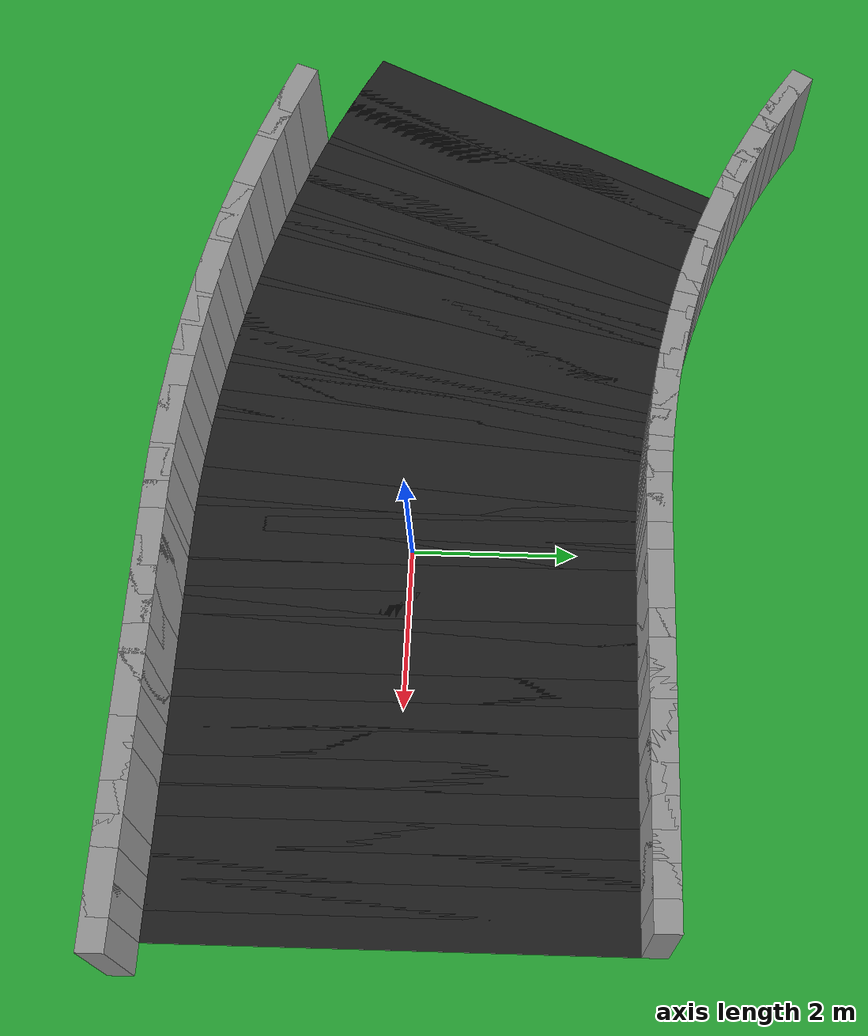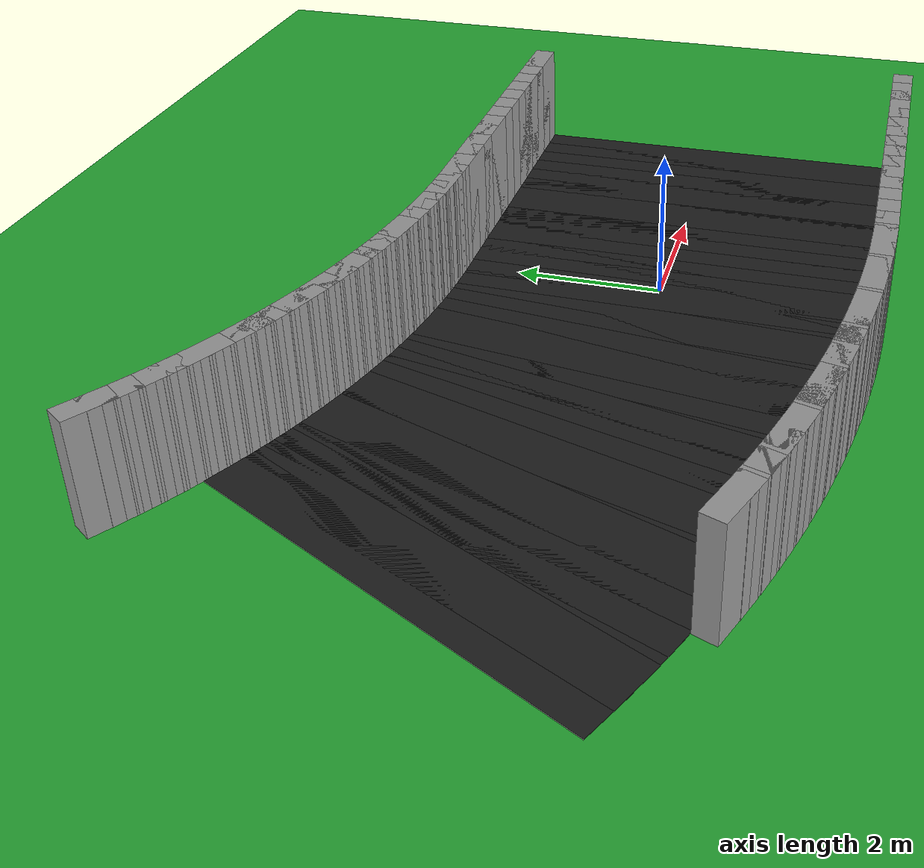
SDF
<sdf version="1.6">
 <world name="loop_speedloop">
  <include><uri>model://sun</uri></include>
  <model name="ground_plane">
   <static>true</static>
   <link name="link">
    <collision name="collision">
     <surface><friction><ode><mu>100</mu><mu2>50</mu2></ode></friction></surface>
     <geometry><plane><normal>0 0 1</normal><size>120 120</size></plane></geometry>
    </collision>
    <visual name="visual">
     <geometry><plane><normal>0 0 1</normal><size>120 120</size></plane></geometry>
     <material>
      <script><uri>file://media/materials/scripts/gazebo.material</uri><name>Gazebo/Green</name></script>
     </material>
    </visual>
   </link>
  </model>
  <model name="asphalt_0">
   <static>true</static>
   <pose>0.175 0.000 0.005 0 0 0.00000</pose>
   <link name="link">
    <visual name="visual">
     <geometry><box><size>0.710 5.500 0.010</size></box></geometry>
     <material>
      <script><uri>file://media/materials/scripts/gazebo.material</uri><name>Gazebo/Black</name></script>
     </material>
    </visual>
   </link>
  </model>
  <model name="curbL_0">
   <static>true</static>
   <pose>0.175 2.900 0.750 0 0 0.00000</pose>
   <link name="link">
    <collision name="collision"><geometry><box><size>0.710 0.300 1.500</size></box></geometry></collision>
    <visual name="visual">
     <geometry><box><size>0.710 0.300 1.500</size></box></geometry>
     <material>
      <script><uri>file://media/materials/scripts/gazebo.material</uri><name>Gazebo/Grey</name></script>
     </material>
    </visual>
   </link>
  </model>
  <model name="curbR_0">
   <static>true</static>
   <pose>0.175 -2.900 0.750 0 0 0.00000</pose>
   <link name="link">
    <collision name="collision"><geometry><box><size>0.710 0.300 1.500</size></box></geometry></collision>
    <visual name="visual">
     <geometry><box><size>0.710 0.300 1.500</size></box></geometry>
     <material>
      <script><uri>file://media/materials/scripts/gazebo.material</uri><name>Gazebo/Grey</name></script>
     </material>
    </visual>
   </link>
  </model>
  <model name="asphalt_1">
   <static>true</static>
   <pose>0.525 0.000 0.005 0 0 0.00000</pose>
   <link name="link">
    <visual name="visual">
     <geometry><box><size>0.710 5.500 0.010</size></box></geometry>
     <material>
      <script><uri>file://media/materials/scripts/gazebo.material</uri><name>Gazebo/Black</name></script>
     </material>
    </visual>
   </link>
  </model>
  <model name="curbL_1">
   <static>true</static>
   <pose>0.525 2.900 0.750 0 0 0.00000</pose>
   <link name="link">
    <collision name="collision"><geometry><box><size>0.710 0.300 1.500</size></box></geometry></collision>
    <visual name="visual">
     <geometry><box><size>0.710 0.300 1.500</size></box></geometry>
     <material>
      <script><uri>file://media/materials/scripts/gazebo.material</uri><name>Gazebo/Grey</name></script>
     </material>
    </visual>
   </link>
  </model>
  <model name="curbR_1">
   <static>true</static>
   <pose>0.525 -2.900 0.750 0 0 0.00000</pose>
   <link name="link">
    <collision name="collision"><geometry><box><size>0.710 0.300 1.500</size></box></geometry></collision>
    <visual name="visual">
     <geometry><box><size>0.710 0.300 1.500</size></box></geometry>
     <material>
      <script><uri>file://media/materials/scripts/gazebo.material</uri><name>Gazebo/Grey</name></script>
     </material>
    </visual>
   </link>
  </model>
  <model name="asphalt_2">
   <static>true</static>
   <pose>0.875 0.000 0.005 0 0 0.00000</pose>
   <link name="link">
    <visual name="visual">
     <geometry><box><size>0.710 5.500 0.010</size></box></geometry>
     <material>
      <script><uri>file://media/materials/scripts/gazebo.material</uri><name>Gazebo/Black</name></script>
     </material>
    </visual>
   </link>
  </model>
  <model name="curbL_2">
   <static>true</static>
   <pose>0.875 2.900 0.750 0 0 0.00000</pose>
   <link name="link">
    <collision name="collision"><geometry><box><size>0.710 0.300 1.500</size></box></geometry></collision>
    <visual name="visual">
     <geometry><box><size>0.710 0.300 1.500</size></box></geometry>
     <material>
      <script><uri>file://media/materials/scripts/gazebo.material</uri><name>Gazebo/Grey</name></script>
     </material>
    </visual>
   </link>
  </model>
  <model name="curbR_2">
   <static>true</static>
   <pose>0.875 -2.900 0.750 0 0 0.00000</pose>
   <link name="link">
    <collision name="collision"><geometry><box><size>0.710 0.300 1.500</size></box></geometry></collision>
    <visual name="visual">
     <geometry><box><size>0.710 0.300 1.500</size></box></geometry>
     <material>
      <script><uri>file://media/materials/scripts/gazebo.material</uri><name>Gazebo/Grey</name></script>
     </material>
    </visual>
   </link>
  </model>
  <model name="asphalt_3">
   <static>true</static>
   <pose>1.225 0.000 0.005 0 0 0.00000</pose>
   <link name="link">
    <visual name="visual">
     <geometry><box><size>0.710 5.500 0.010</size></box></geometry>
     <material>
      <script><uri>file://media/materials/scripts/gazebo.material</uri><name>Gazebo/Black</name></script>
     </material>
    </visual>
   </link>
  </model>
  <model name="curbL_3">
   <static>true</static>
   <pose>1.225 2.900 0.750 0 0 0.00000</pose>
   <link name="link">
    <collision name="collision"><geometry><box><size>0.710 0.300 1.500</size></box></geometry></collision>
    <visual name="visual">
     <geometry><box><size>0.710 0.300 1.500</size></box></geometry>
     <material>
      <script><uri>file://media/materials/scripts/gazebo.material</uri><name>Gazebo/Grey</name></script>
     </material>
    </visual>
   </link>
  </model>
  <model name="curbR_3">
   <static>true</static>
   <pose>1.225 -2.900 0.750 0 0 0.00000</pose>
   <link name="link">
    <collision name="collision"><geometry><box><size>0.710 0.300 1.500</size></box></geometry></collision>
    <visual name="visual">
     <geometry><box><size>0.710 0.300 1.500</size></box></geometry>
     <material>
      <script><uri>file://media/materials/scripts/gazebo.material</uri><name>Gazebo/Grey</name></script>
     </material>
    </visual>
   </link>
  </model>
  <model name="asphalt_4">
   <static>true</static>
   <pose>1.575 0.000 0.005 0 0 0.00000</pose>
   <link name="link">
    <visual name="visual">
     <geometry><box><size>0.710 5.500 0.010</size></box></geometry>
     <material>
      <script><uri>file://media/materials/scripts/gazebo.material</uri><name>Gazebo/Black</name></script>
     </material>
    </visual>
   </link>
  </model>
  <model name="curbL_4">
   <static>true</static>
   <pose>1.575 2.900 0.750 0 0 0.00000</pose>
   <link name="link">
    <collision name="collision"><geometry><box><size>0.710 0.300 1.500</size></box></geometry></collision>
    <visual name="visual">
     <geometry><box><size>0.710 0.300 1.500</size></box></geometry>
     <material>
      <script><uri>file://media/materials/scripts/gazebo.material</uri><name>Gazebo/Grey</name></script>
     </material>
    </visual>
   </link>
  </model>
  <model name="curbR_4">
   <static>true</static>
   <pose>1.575 -2.900 0.750 0 0 0.00000</pose>
   <link name="link">
    <collision name="collision"><geometry><box><size>0.710 0.300 1.500</size></box></geometry></collision>
    <visual name="visual">
     <geometry><box><size>0.710 0.300 1.500</size></box></geometry>
     <material>
      <script><uri>file://media/materials/scripts/gazebo.material</uri><name>Gazebo/Grey</name></script>
     </material>
    </visual>
   </link>
  </model>
  <model name="asphalt_5">
   <static>true</static>
   <pose>1.925 0.000 0.005 0 0 0.00000</pose>
   <link name="link">
    <visual name="visual">
     <geometry><box><size>0.710 5.500 0.010</size></box></geometry>
     <material>
      <script><uri>file://media/materials/scripts/gazebo.material</uri><name>Gazebo/Black</name></script>
     </material>
    </visual>
   </link>
  </model>
  <model name="curbL_5">
   <static>true</static>
   <pose>1.925 2.900 0.750 0 0 0.00000</pose>
   <link name="link">
    <collision name="collision"><geometry><box><size>0.710 0.300 1.500</size></box></geometry></collision>
    <visual name="visual">
     <geometry><box><size>0.710 0.300 1.500</size></box></geometry>
     <material>
      <script><uri>file://media/materials/scripts/gazebo.material</uri><name>Gazebo/Grey</name></script>
     </material>
    </visual>
   </link>
  </model>
  <model name="curbR_5">
   <static>true</static>
   <pose>1.925 -2.900 0.750 0 0 0.00000</pose>
   <link name="link">
    <collision name="collision"><geometry><box><size>0.710 0.300 1.500</size></box></geometry></collision>
    <visual name="visual">
     <geometry><box><size>0.710 0.300 1.500</size></box></geometry>
     <material>
      <script><uri>file://media/materials/scripts/gazebo.material</uri><name>Gazebo/Grey</name></script>
     </material>
    </visual>
   </link>
  </model>
  <model name="asphalt_6">
   <static>true</static>
   <pose>2.275 0.000 0.005 0 0 0.00000</pose>
   <link name="link">
    <visual name="visual">
     <geometry><box><size>0.710 5.500 0.010</size></box></geometry>
     <material>
      <script><uri>file://media/materials/scripts/gazebo.material</uri><name>Gazebo/Black</name></script>
     </material>
    </visual>
   </link>
  </model>
  <model name="curbL_6">
   <static>true</static>
   <pose>2.275 2.900 0.750 0 0 0.00000</pose>
   <link name="link">
    <collision name="collision"><geometry><box><size>0.710 0.300 1.500</size></box></geometry></collision>
    <visual name="visual">
     <geometry><box><size>0.710 0.300 1.500</size></box></geometry>
     <material>
      <script><uri>file://media/materials/scripts/gazebo.material</uri><name>Gazebo/Grey</name></script>
     </material>
    </visual>
   </link>
  </model>
  <model name="curbR_6">
   <static>true</static>
   <pose>2.275 -2.900 0.750 0 0 0.00000</pose>
   <link name="link">
    <collision name="collision"><geometry><box><size>0.710 0.300 1.500</size></box></geometry></collision>
    <visual name="visual">
     <geometry><box><size>0.710 0.300 1.500</size></box></geometry>
     <material>
      <script><uri>file://media/materials/scripts/gazebo.material</uri><name>Gazebo/Grey</name></script>
     </material>
    </visual>
   </link>
  </model>
  <model name="asphalt_7">
   <static>true</static>
   <pose>2.625 0.000 0.005 0 0 0.00000</pose>
   <link name="link">
    <visual name="visual">
     <geometry><box><size>0.710 5.500 0.010</size></box></geometry>
     <material>
      <script><uri>file://media/materials/scripts/gazebo.material</uri><name>Gazebo/Black</name></script>
     </material>
    </visual>
   </link>
  </model>
  <model name="curbL_7">
   <static>true</static>
   <pose>2.625 2.900 0.750 0 0 0.00000</pose>
   <link name="link">
    <collision name="collision"><geometry><box><size>0.710 0.300 1.500</size></box></geometry></collision>
    <visual name="visual">
     <geometry><box><size>0.710 0.300 1.500</size></box></geometry>
     <material>
      <script><uri>file://media/materials/scripts/gazebo.material</uri><name>Gazebo/Grey</name></script>
     </material>
    </visual>
   </link>
  </model>
  <model name="curbR_7">
   <static>true</static>
   <pose>2.625 -2.900 0.750 0 0 0.00000</pose>
   <link name="link">
    <collision name="collision"><geometry><box><size>0.710 0.300 1.500</size></box></geometry></collision>
    <visual name="visual">
     <geometry><box><size>0.710 0.300 1.500</size></box></geometry>
     <material>
      <script><uri>file://media/materials/scripts/gazebo.material</uri><name>Gazebo/Grey</name></script>
     </material>
    </visual>
   </link>
  </model>
  <model name="asphalt_8">
   <static>true</static>
   <pose>2.975 0.000 0.005 0 0 0.00000</pose>
   <link name="link">
    <visual name="visual">
     <geometry><box><size>0.710 5.500 0.010</size></box></geometry>
     <material>
      <script><uri>file://media/materials/scripts/gazebo.material</uri><name>Gazebo/Black</name></script>
     </material>
    </visual>
   </link>
  </model>
  <model name="curbL_8">
   <static>true</static>
   <pose>2.975 2.900 0.750 0 0 0.00000</pose>
   <link name="link">
    <collision name="collision"><geometry><box><size>0.710 0.300 1.500</size></box></geometry></collision>
    <visual name="visual">
     <geometry><box><size>0.710 0.300 1.500</size></box></geometry>
     <material>
      <script><uri>file://media/materials/scripts/gazebo.material</uri><name>Gazebo/Grey</name></script>
     </material>
    </visual>
   </link>
  </model>
  <model name="curbR_8">
   <static>true</static>
   <pose>2.975 -2.900 0.750 0 0 0.00000</pose>
   <link name="link">
    <collision name="collision"><geometry><box><size>0.710 0.300 1.500</size></box></geometry></collision>
    <visual name="visual">
     <geometry><box><size>0.710 0.300 1.500</size></box></geometry>
     <material>
      <script><uri>file://media/materials/scripts/gazebo.material</uri><name>Gazebo/Grey</name></script>
     </material>
    </visual>
   </link>
  </model>
  <model name="asphalt_9">
   <static>true</static>
   <pose>3.325 0.000 0.005 0 0 0.00000</pose>
   <link name="link">
    <visual name="visual">
     <geometry><box><size>0.710 5.500 0.010</size></box></geometry>
     <material>
      <script><uri>file://media/materials/scripts/gazebo.material</uri><name>Gazebo/Black</name></script>
     </material>
    </visual>
   </link>
  </model>
  <model name="curbL_9">
   <static>true</static>
   <pose>3.325 2.900 0.750 0 0 0.00000</pose>
   <link name="link">
    <collision name="collision"><geometry><box><size>0.710 0.300 1.500</size></box></geometry></collision>
    <visual name="visual">
     <geometry><box><size>0.710 0.300 1.500</size></box></geometry>
     <material>
      <script><uri>file://media/materials/scripts/gazebo.material</uri><name>Gazebo/Grey</name></script>
     </material>
    </visual>
   </link>
  </model>
  <model name="curbR_9">
   <static>true</static>
   <pose>3.325 -2.900 0.750 0 0 0.00000</pose>
   <link name="link">
    <collision name="collision"><geometry><box><size>0.710 0.300 1.500</size></box></geometry></collision>
    <visual name="visual">
     <geometry><box><size>0.710 0.300 1.500</size></box></geometry>
     <material>
      <script><uri>file://media/materials/scripts/gazebo.material</uri><name>Gazebo/Grey</name></script>
     </material>
    </visual>
   </link>
  </model>
  <model name="asphalt_10">
   <static>true</static>
   <pose>3.675 0.000 0.005 0 0 0.00000</pose>
   <link name="link">
    <visual name="visual">
     <geometry><box><size>0.710 5.500 0.010</size></box></geometry>
     <material>
      <script><uri>file://media/materials/scripts/gazebo.material</uri><name>Gazebo/Black</name></script>
     </material>
    </visual>
   </link>
  </model>
  <model name="curbL_10">
   <static>true</static>
   <pose>3.675 2.900 0.750 0 0 0.00000</pose>
   <link name="link">
    <collision name="collision"><geometry><box><size>0.710 0.300 1.500</size></box></geometry></collision>
    <visual name="visual">
     <geometry><box><size>0.710 0.300 1.500</size></box></geometry>
     <material>
      <script><uri>file://media/materials/scripts/gazebo.material</uri><name>Gazebo/Grey</name></script>
     </material>
    </visual>
   </link>
  </model>
  <model name="curbR_10">
   <static>true</static>
   <pose>3.675 -2.900 0.750 0 0 0.00000</pose>
   <link name="link">
    <collision name="collision"><geometry><box><size>0.710 0.300 1.500</size></box></geometry></collision>
    <visual name="visual">
     <geometry><box><size>0.710 0.300 1.500</size></box></geometry>
     <material>
      <script><uri>file://media/materials/scripts/gazebo.material</uri><name>Gazebo/Grey</name></script>
     </material>
    </visual>
   </link>
  </model>
  <model name="asphalt_11">
   <static>true</static>
   <pose>4.025 0.000 0.005 0 0 0.00000</pose>
   <link name="link">
    <visual name="visual">
     <geometry><box><size>0.710 5.500 0.010</size></box></geometry>
     <material>
      <script><uri>file://media/materials/scripts/gazebo.material</uri><name>Gazebo/Black</name></script>
     </material>
    </visual>
   </link>
  </model>
  <model name="curbL_11">
   <static>true</static>
   <pose>4.025 2.900 0.750 0 0 0.00000</pose>
   <link name="link">
    <collision name="collision"><geometry><box><size>0.710 0.300 1.500</size></box></geometry></collision>
    <visual name="visual">
     <geometry><box><size>0.710 0.300 1.500</size></box></geometry>
     <material>
      <script><uri>file://media/materials/scripts/gazebo.material</uri><name>Gazebo/Grey</name></script>
     </material>
    </visual>
   </link>
  </model>
  <model name="curbR_11">
   <static>true</static>
   <pose>4.025 -2.900 0.750 0 0 0.00000</pose>
   <link name="link">
    <collision name="collision"><geometry><box><size>0.710 0.300 1.500</size></box></geometry></collision>
    <visual name="visual">
     <geometry><box><size>0.710 0.300 1.500</size></box></geometry>
     <material>
      <script><uri>file://media/materials/scripts/gazebo.material</uri><name>Gazebo/Grey</name></script>
     </material>
    </visual>
   </link>
  </model>
  <model name="asphalt_12">
   <static>true</static>
   <pose>4.375 0.000 0.005 0 0 0.00000</pose>
   <link name="link">
    <visual name="visual">
     <geometry><box><size>0.710 5.500 0.010</size></box></geometry>
     <material>
      <script><uri>file://media/materials/scripts/gazebo.material</uri><name>Gazebo/Black</name></script>
     </material>
    </visual>
   </link>
  </model>
  <model name="curbL_12">
   <static>true</static>
   <pose>4.375 2.900 0.750 0 0 0.00000</pose>
   <link name="link">
    <collision name="collision"><geometry><box><size>0.710 0.300 1.500</size></box></geometry></collision>
    <visual name="visual">
     <geometry><box><size>0.710 0.300 1.500</size></box></geometry>
     <material>
      <script><uri>file://media/materials/scripts/gazebo.material</uri><name>Gazebo/Grey</name></script>
     </material>
    </visual>
   </link>
  </model>
  <model name="curbR_12">
   <static>true</static>
   <pose>4.375 -2.900 0.750 0 0 0.00000</pose>
   <link name="link">
    <collision name="collision"><geometry><box><size>0.710 0.300 1.500</size></box></geometry></collision>
    <visual name="visual">
     <geometry><box><size>0.710 0.300 1.500</size></box></geometry>
     <material>
      <script><uri>file://media/materials/scripts/gazebo.material</uri><name>Gazebo/Grey</name></script>
     </material>
    </visual>
   </link>
  </model>
  <model name="curbR_13">
   <static>true</static>
   <pose>4.725 -2.900 0.750 0 0 0.00000</pose>
   <link name="link">
    <collision name="collision"><geometry><box><size>0.710 0.300 1.500</size></box></geometry></collision>
    <visual name="visual">
     <geometry><box><size>0.710 0.300 1.500</size></box></geometry>
     <material>
      <script><uri>file://media/materials/scripts/gazebo.material</uri><name>Gazebo/Grey</name></script>
     </material>
    </visual>
   </link>
  </model>
  <model name="curbL_496">
   <static>true</static>
   <pose>-6.138 4.752 0.750 0 0 -0.58593</pose>
   <link name="link">
    <collision name="collision"><geometry><box><size>0.637 0.300 1.500</size></box></geometry></collision>
    <visual name="visual">
     <geometry><box><size>0.637 0.300 1.500</size></box></geometry>
     <material>
      <script><uri>file://media/materials/scripts/gazebo.material</uri><name>Gazebo/Grey</name></script>
     </material>
    </visual>
   </link>
  </model>
  <model name="curbL_497">
   <static>true</static>
   <pose>-5.905 4.602 0.750 0 0 -0.56100</pose>
   <link name="link">
    <collision name="collision"><geometry><box><size>0.637 0.300 1.500</size></box></geometry></collision>
    <visual name="visual">
     <geometry><box><size>0.637 0.300 1.500</size></box></geometry>
     <material>
      <script><uri>file://media/materials/scripts/gazebo.material</uri><name>Gazebo/Grey</name></script>
     </material>
    </visual>
   </link>
  </model>
  <model name="curbL_498">
   <static>true</static>
   <pose>-5.669 4.458 0.750 0 0 -0.53607</pose>
   <link name="link">
    <collision name="collision"><geometry><box><size>0.637 0.300 1.500</size></box></geometry></collision>
    <visual name="visual">
     <geometry><box><size>0.637 0.300 1.500</size></box></geometry>
     <material>
      <script><uri>file://media/materials/scripts/gazebo.material</uri><name>Gazebo/Grey</name></script>
     </material>
    </visual>
   </link>
  </model>
  <model name="curbL_499">
   <static>true</static>
   <pose>-5.429 4.319 0.750 0 0 -0.51113</pose>
   <link name="link">
    <collision name="collision"><geometry><box><size>0.637 0.300 1.500</size></box></geometry></collision>
    <visual name="visual">
     <geometry><box><size>0.637 0.300 1.500</size></box></geometry>
     <material>
      <script><uri>file://media/materials/scripts/gazebo.material</uri><name>Gazebo/Grey</name></script>
     </material>
    </visual>
   </link>
  </model>
  <model name="curbL_500">
   <static>true</static>
   <pose>-5.186 4.187 0.750 0 0 -0.48620</pose>
   <link name="link">
    <collision name="collision"><geometry><box><size>0.637 0.300 1.500</size></box></geometry></collision>
    <visual name="visual">
     <geometry><box><size>0.637 0.300 1.500</size></box></geometry>
     <material>
      <script><uri>file://media/materials/scripts/gazebo.material</uri><name>Gazebo/Grey</name></script>
     </material>
    </visual>
   </link>
  </model>
  <model name="asphalt_501">
   <static>true</static>
   <pose>-6.231 1.464 0.005 0 0 -0.46127</pose>
   <link name="link">
    <visual name="visual">
     <geometry><box><size>0.709 5.500 0.010</size></box></geometry>
     <material>
      <script><uri>file://media/materials/scripts/gazebo.material</uri><name>Gazebo/Black</name></script>
     </material>
    </visual>
   </link>
  </model>
  <model name="curbL_501">
   <static>true</static>
   <pose>-4.940 4.061 0.750 0 0 -0.46127</pose>
   <link name="link">
    <collision name="collision"><geometry><box><size>0.637 0.300 1.500</size></box></geometry></collision>
    <visual name="visual">
     <geometry><box><size>0.637 0.300 1.500</size></box></geometry>
     <material>
      <script><uri>file://media/materials/scripts/gazebo.material</uri><name>Gazebo/Grey</name></script>
     </material>
    </visual>
   </link>
  </model>
  <model name="asphalt_502">
   <static>true</static>
   <pose>-5.916 1.313 0.005 0 0 -0.43633</pose>
   <link name="link">
    <visual name="visual">
     <geometry><box><size>0.709 5.500 0.010</size></box></geometry>
     <material>
      <script><uri>file://media/materials/scripts/gazebo.material</uri><name>Gazebo/Black</name></script>
     </material>
    </visual>
   </link>
  </model>
  <model name="curbL_502">
   <static>true</static>
   <pose>-4.691 3.941 0.750 0 0 -0.43633</pose>
   <link name="link">
    <collision name="collision"><geometry><box><size>0.637 0.300 1.500</size></box></geometry></collision>
    <visual name="visual">
     <geometry><box><size>0.637 0.300 1.500</size></box></geometry>
     <material>
      <script><uri>file://media/materials/scripts/gazebo.material</uri><name>Gazebo/Grey</name></script>
     </material>
    </visual>
   </link>
  </model>
  <model name="asphalt_503">
   <static>true</static>
   <pose>-5.598 1.169 0.005 0 0 -0.41140</pose>
   <link name="link">
    <visual name="visual">
     <geometry><box><size>0.709 5.500 0.010</size></box></geometry>
     <material>
      <script><uri>file://media/materials/scripts/gazebo.material</uri><name>Gazebo/Black</name></script>
     </material>
    </visual>
   </link>
  </model>
  <model name="curbL_503">
   <static>true</static>
   <pose>-4.439 3.827 0.750 0 0 -0.41140</pose>
   <link name="link">
    <collision name="collision"><geometry><box><size>0.637 0.300 1.500</size></box></geometry></collision>
    <visual name="visual">
     <geometry><box><size>0.637 0.300 1.500</size></box></geometry>
     <material>
      <script><uri>file://media/materials/scripts/gazebo.material</uri><name>Gazebo/Grey</name></script>
     </material>
    </visual>
   </link>
  </model>
  <model name="asphalt_504">
   <static>true</static>
   <pose>-5.277 1.034 0.005 0 0 -0.38647</pose>
   <link name="link">
    <visual name="visual">
     <geometry><box><size>0.709 5.500 0.010</size></box></geometry>
     <material>
      <script><uri>file://media/materials/scripts/gazebo.material</uri><name>Gazebo/Black</name></script>
     </material>
    </visual>
   </link>
  </model>
  <model name="curbL_504">
   <static>true</static>
   <pose>-4.184 3.719 0.750 0 0 -0.38647</pose>
   <link name="link">
    <collision name="collision"><geometry><box><size>0.637 0.300 1.500</size></box></geometry></collision>
    <visual name="visual">
     <geometry><box><size>0.637 0.300 1.500</size></box></geometry>
     <material>
      <script><uri>file://media/materials/scripts/gazebo.material</uri><name>Gazebo/Grey</name></script>
     </material>
    </visual>
   </link>
  </model>
  <model name="asphalt_505">
   <static>true</static>
   <pose>-4.952 0.906 0.005 0 0 -0.36153</pose>
   <link name="link">
    <visual name="visual">
     <geometry><box><size>0.709 5.500 0.010</size></box></geometry>
     <material>
      <script><uri>file://media/materials/scripts/gazebo.material</uri><name>Gazebo/Black</name></script>
     </material>
    </visual>
   </link>
  </model>
  <model name="curbL_505">
   <static>true</static>
   <pose>-3.926 3.618 0.750 0 0 -0.36153</pose>
   <link name="link">
    <collision name="collision"><geometry><box><size>0.637 0.300 1.500</size></box></geometry></collision>
    <visual name="visual">
     <geometry><box><size>0.637 0.300 1.500</size></box></geometry>
     <material>
      <script><uri>file://media/materials/scripts/gazebo.material</uri><name>Gazebo/Grey</name></script>
     </material>
    </visual>
   </link>
  </model>
  <model name="curbR_505">
   <static>true</static>
   <pose>-5.977 -1.806 0.750 0 0 -0.36153</pose>
   <link name="link">
    <collision name="collision"><geometry><box><size>0.781 0.300 1.500</size></box></geometry></collision>
    <visual name="visual">
     <geometry><box><size>0.781 0.300 1.500</size></box></geometry>
     <material>
      <script><uri>file://media/materials/scripts/gazebo.material</uri><name>Gazebo/Grey</name></script>
     </material>
    </visual>
   </link>
  </model>
  <model name="asphalt_506">
   <static>true</static>
   <pose>-4.624 0.787 0.005 0 0 -0.33660</pose>
   <link name="link">
    <visual name="visual">
     <geometry><box><size>0.709 5.500 0.010</size></box></geometry>
     <material>
      <script><uri>file://media/materials/scripts/gazebo.material</uri><name>Gazebo/Black</name></script>
     </material>
    </visual>
   </link>
  </model>
  <model name="curbL_506">
   <static>true</static>
   <pose>-3.666 3.524 0.750 0 0 -0.33660</pose>
   <link name="link">
    <collision name="collision"><geometry><box><size>0.637 0.300 1.500</size></box></geometry></collision>
    <visual name="visual">
     <geometry><box><size>0.637 0.300 1.500</size></box></geometry>
     <material>
      <script><uri>file://media/materials/scripts/gazebo.material</uri><name>Gazebo/Grey</name></script>
     </material>
    </visual>
   </link>
  </model>
  <model name="curbR_506">
   <static>true</static>
   <pose>-5.581 -1.950 0.750 0 0 -0.33660</pose>
   <link name="link">
    <collision name="collision"><geometry><box><size>0.781 0.300 1.500</size></box></geometry></collision>
    <visual name="visual">
     <geometry><box><size>0.781 0.300 1.500</size></box></geometry>
     <material>
      <script><uri>file://media/materials/scripts/gazebo.material</uri><name>Gazebo/Grey</name></script>
     </material>
    </visual>
   </link>
  </model>
  <model name="asphalt_507">
   <static>true</static>
   <pose>-4.293 0.676 0.005 0 0 -0.31167</pose>
   <link name="link">
    <visual name="visual">
     <geometry><box><size>0.709 5.500 0.010</size></box></geometry>
     <material>
      <script><uri>file://media/materials/scripts/gazebo.material</uri><name>Gazebo/Black</name></script>
     </material>
    </visual>
   </link>
  </model>
  <model name="curbL_507">
   <static>true</static>
   <pose>-3.404 3.436 0.750 0 0 -0.31167</pose>
   <link name="link">
    <collision name="collision"><geometry><box><size>0.637 0.300 1.500</size></box></geometry></collision>
    <visual name="visual">
     <geometry><box><size>0.637 0.300 1.500</size></box></geometry>
     <material>
      <script><uri>file://media/materials/scripts/gazebo.material</uri><name>Gazebo/Grey</name></script>
     </material>
    </visual>
   </link>
  </model>
  <model name="curbR_507">
   <static>true</static>
   <pose>-5.182 -2.085 0.750 0 0 -0.31167</pose>
   <link name="link">
    <collision name="collision"><geometry><box><size>0.781 0.300 1.500</size></box></geometry></collision>
    <visual name="visual">
     <geometry><box><size>0.781 0.300 1.500</size></box></geometry>
     <material>
      <script><uri>file://media/materials/scripts/gazebo.material</uri><name>Gazebo/Grey</name></script>
     </material>
    </visual>
   </link>
  </model>
  <model name="asphalt_508">
   <static>true</static>
   <pose>-3.959 0.573 0.005 0 0 -0.28673</pose>
   <link name="link">
    <visual name="visual">
     <geometry><box><size>0.709 5.500 0.010</size></box></geometry>
     <material>
      <script><uri>file://media/materials/scripts/gazebo.material</uri><name>Gazebo/Black</name></script>
     </material>
    </visual>
   </link>
  </model>
  <model name="curbL_508">
   <static>true</static>
   <pose>-3.139 3.354 0.750 0 0 -0.28673</pose>
   <link name="link">
    <collision name="collision"><geometry><box><size>0.637 0.300 1.500</size></box></geometry></collision>
    <visual name="visual">
     <geometry><box><size>0.637 0.300 1.500</size></box></geometry>
     <material>
      <script><uri>file://media/materials/scripts/gazebo.material</uri><name>Gazebo/Grey</name></script>
     </material>
    </visual>
   </link>
  </model>
  <model name="curbR_508">
   <static>true</static>
   <pose>-4.779 -2.209 0.750 0 0 -0.28673</pose>
   <link name="link">
    <collision name="collision"><geometry><box><size>0.781 0.300 1.500</size></box></geometry></collision>
    <visual name="visual">
     <geometry><box><size>0.781 0.300 1.500</size></box></geometry>
     <material>
      <script><uri>file://media/materials/scripts/gazebo.material</uri><name>Gazebo/Grey</name></script>
     </material>
    </visual>
   </link>
  </model>
  <model name="asphalt_509">
   <static>true</static>
   <pose>-3.623 0.478 0.005 0 0 -0.26180</pose>
   <link name="link">
    <visual name="visual">
     <geometry><box><size>0.709 5.500 0.010</size></box></geometry>
     <material>
      <script><uri>file://media/materials/scripts/gazebo.material</uri><name>Gazebo/Black</name></script>
     </material>
    </visual>
   </link>
  </model>
  <model name="curbL_509">
   <static>true</static>
   <pose>-2.873 3.279 0.750 0 0 -0.26180</pose>
   <link name="link">
    <collision name="collision"><geometry><box><size>0.637 0.300 1.500</size></box></geometry></collision>
    <visual name="visual">
     <geometry><box><size>0.637 0.300 1.500</size></box></geometry>
     <material>
      <script><uri>file://media/materials/scripts/gazebo.material</uri><name>Gazebo/Grey</name></script>
     </material>
    </visual>
   </link>
  </model>
  <model name="curbR_509">
   <static>true</static>
   <pose>-4.374 -2.323 0.750 0 0 -0.26180</pose>
   <link name="link">
    <collision name="collision"><geometry><box><size>0.781 0.300 1.500</size></box></geometry></collision>
    <visual name="visual">
     <geometry><box><size>0.781 0.300 1.500</size></box></geometry>
     <material>
      <script><uri>file://media/materials/scripts/gazebo.material</uri><name>Gazebo/Grey</name></script>
     </material>
    </visual>
   </link>
  </model>
  <model name="asphalt_510">
   <static>true</static>
   <pose>-3.285 0.392 0.005 0 0 -0.23687</pose>
   <link name="link">
    <visual name="visual">
     <geometry><box><size>0.709 5.500 0.010</size></box></geometry>
     <material>
      <script><uri>file://media/materials/scripts/gazebo.material</uri><name>Gazebo/Black</name></script>
     </material>
    </visual>
   </link>
  </model>
  <model name="curbL_510">
   <static>true</static>
   <pose>-2.605 3.211 0.750 0 0 -0.23687</pose>
   <link name="link">
    <collision name="collision"><geometry><box><size>0.637 0.300 1.500</size></box></geometry></collision>
    <visual name="visual">
     <geometry><box><size>0.637 0.300 1.500</size></box></geometry>
     <material>
      <script><uri>file://media/materials/scripts/gazebo.material</uri><name>Gazebo/Grey</name></script>
     </material>
    </visual>
   </link>
  </model>
  <model name="curbR_510">
   <static>true</static>
   <pose>-3.965 -2.427 0.750 0 0 -0.23687</pose>
   <link name="link">
    <collision name="collision"><geometry><box><size>0.781 0.300 1.500</size></box></geometry></collision>
    <visual name="visual">
     <geometry><box><size>0.781 0.300 1.500</size></box></geometry>
     <material>
      <script><uri>file://media/materials/scripts/gazebo.material</uri><name>Gazebo/Grey</name></script>
     </material>
    </visual>
   </link>
  </model>
  <model name="asphalt_511">
   <static>true</static>
   <pose>-2.945 0.314 0.005 0 0 -0.21193</pose>
   <link name="link">
    <visual name="visual">
     <geometry><box><size>0.709 5.500 0.010</size></box></geometry>
     <material>
      <script><uri>file://media/materials/scripts/gazebo.material</uri><name>Gazebo/Black</name></script>
     </material>
    </visual>
   </link>
  </model>
  <model name="curbL_511">
   <static>true</static>
   <pose>-2.335 3.149 0.750 0 0 -0.21193</pose>
   <link name="link">
    <collision name="collision"><geometry><box><size>0.637 0.300 1.500</size></box></geometry></collision>
    <visual name="visual">
     <geometry><box><size>0.637 0.300 1.500</size></box></geometry>
     <material>
      <script><uri>file://media/materials/scripts/gazebo.material</uri><name>Gazebo/Grey</name></script>
     </material>
    </visual>
   </link>
  </model>
  <model name="curbR_511">
   <static>true</static>
   <pose>-3.555 -2.521 0.750 0 0 -0.21193</pose>
   <link name="link">
    <collision name="collision"><geometry><box><size>0.781 0.300 1.500</size></box></geometry></collision>
    <visual name="visual">
     <geometry><box><size>0.781 0.300 1.500</size></box></geometry>
     <material>
      <script><uri>file://media/materials/scripts/gazebo.material</uri><name>Gazebo/Grey</name></script>
     </material>
    </visual>
   </link>
  </model>
  <model name="asphalt_512">
   <static>true</static>
   <pose>-2.603 0.245 0.005 0 0 -0.18700</pose>
   <link name="link">
    <visual name="visual">
     <geometry><box><size>0.709 5.500 0.010</size></box></geometry>
     <material>
      <script><uri>file://media/materials/scripts/gazebo.material</uri><name>Gazebo/Black</name></script>
     </material>
    </visual>
   </link>
  </model>
  <model name="curbL_512">
   <static>true</static>
   <pose>-2.064 3.094 0.750 0 0 -0.18700</pose>
   <link name="link">
    <collision name="collision"><geometry><box><size>0.637 0.300 1.500</size></box></geometry></collision>
    <visual name="visual">
     <geometry><box><size>0.637 0.300 1.500</size></box></geometry>
     <material>
      <script><uri>file://media/materials/scripts/gazebo.material</uri><name>Gazebo/Grey</name></script>
     </material>
    </visual>
   </link>
  </model>
  <model name="curbR_512">
   <static>true</static>
   <pose>-3.142 -2.604 0.750 0 0 -0.18700</pose>
   <link name="link">
    <collision name="collision"><geometry><box><size>0.781 0.300 1.500</size></box></geometry></collision>
    <visual name="visual">
     <geometry><box><size>0.781 0.300 1.500</size></box></geometry>
     <material>
      <script><uri>file://media/materials/scripts/gazebo.material</uri><name>Gazebo/Grey</name></script>
     </material>
    </visual>
   </link>
  </model>
  <model name="asphalt_513">
   <static>true</static>
   <pose>-2.259 0.185 0.005 0 0 -0.16207</pose>
   <link name="link">
    <visual name="visual">
     <geometry><box><size>0.709 5.500 0.010</size></box></geometry>
     <material>
      <script><uri>file://media/materials/scripts/gazebo.material</uri><name>Gazebo/Black</name></script>
     </material>
    </visual>
   </link>
  </model>
  <model name="curbL_513">
   <static>true</static>
   <pose>-1.791 3.046 0.750 0 0 -0.16207</pose>
   <link name="link">
    <collision name="collision"><geometry><box><size>0.637 0.300 1.500</size></box></geometry></collision>
    <visual name="visual">
     <geometry><box><size>0.637 0.300 1.500</size></box></geometry>
     <material>
      <script><uri>file://media/materials/scripts/gazebo.material</uri><name>Gazebo/Grey</name></script>
     </material>
    </visual>
   </link>
  </model>
  <model name="curbR_513">
   <static>true</static>
   <pose>-2.727 -2.677 0.750 0 0 -0.16207</pose>
   <link name="link">
    <collision name="collision"><geometry><box><size>0.781 0.300 1.500</size></box></geometry></collision>
    <visual name="visual">
     <geometry><box><size>0.781 0.300 1.500</size></box></geometry>
     <material>
      <script><uri>file://media/materials/scripts/gazebo.material</uri><name>Gazebo/Grey</name></script>
     </material>
    </visual>
   </link>
  </model>
  <model name="asphalt_514">
   <static>true</static>
   <pose>-1.914 0.133 0.005 0 0 -0.13713</pose>
   <link name="link">
    <visual name="visual">
     <geometry><box><size>0.709 5.500 0.010</size></box></geometry>
     <material>
      <script><uri>file://media/materials/scripts/gazebo.material</uri><name>Gazebo/Black</name></script>
     </material>
    </visual>
   </link>
  </model>
  <model name="curbL_514">
   <static>true</static>
   <pose>-1.517 3.005 0.750 0 0 -0.13713</pose>
   <link name="link">
    <collision name="collision"><geometry><box><size>0.637 0.300 1.500</size></box></geometry></collision>
    <visual name="visual">
     <geometry><box><size>0.637 0.300 1.500</size></box></geometry>
     <material>
      <script><uri>file://media/materials/scripts/gazebo.material</uri><name>Gazebo/Grey</name></script>
     </material>
    </visual>
   </link>
  </model>
  <model name="curbR_514">
   <static>true</static>
   <pose>-2.310 -2.740 0.750 0 0 -0.13713</pose>
   <link name="link">
    <collision name="collision"><geometry><box><size>0.781 0.300 1.500</size></box></geometry></collision>
    <visual name="visual">
     <geometry><box><size>0.781 0.300 1.500</size></box></geometry>
     <material>
      <script><uri>file://media/materials/scripts/gazebo.material</uri><name>Gazebo/Grey</name></script>
     </material>
    </visual>
   </link>
  </model>
  <model name="asphalt_515">
   <static>true</static>
   <pose>-1.567 0.089 0.005 0 0 -0.11220</pose>
   <link name="link">
    <visual name="visual">
     <geometry><box><size>0.709 5.500 0.010</size></box></geometry>
     <material>
      <script><uri>file://media/materials/scripts/gazebo.material</uri><name>Gazebo/Black</name></script>
     </material>
    </visual>
   </link>
  </model>
  <model name="curbL_515">
   <static>true</static>
   <pose>-1.243 2.971 0.750 0 0 -0.11220</pose>
   <link name="link">
    <collision name="collision"><geometry><box><size>0.637 0.300 1.500</size></box></geometry></collision>
    <visual name="visual">
     <geometry><box><size>0.637 0.300 1.500</size></box></geometry>
     <material>
      <script><uri>file://media/materials/scripts/gazebo.material</uri><name>Gazebo/Grey</name></script>
     </material>
    </visual>
   </link>
  </model>
  <model name="curbR_515">
   <static>true</static>
   <pose>-1.892 -2.792 0.750 0 0 -0.11220</pose>
   <link name="link">
    <collision name="collision"><geometry><box><size>0.781 0.300 1.500</size></box></geometry></collision>
    <visual name="visual">
     <geometry><box><size>0.781 0.300 1.500</size></box></geometry>
     <material>
      <script><uri>file://media/materials/scripts/gazebo.material</uri><name>Gazebo/Grey</name></script>
     </material>
    </visual>
   </link>
  </model>
  <model name="asphalt_516">
   <static>true</static>
   <pose>-1.220 0.054 0.005 0 0 -0.08727</pose>
   <link name="link">
    <visual name="visual">
     <geometry><box><size>0.709 5.500 0.010</size></box></geometry>
     <material>
      <script><uri>file://media/materials/scripts/gazebo.material</uri><name>Gazebo/Black</name></script>
     </material>
    </visual>
   </link>
  </model>
  <model name="curbL_516">
   <static>true</static>
   <pose>-0.967 2.943 0.750 0 0 -0.08727</pose>
   <link name="link">
    <collision name="collision"><geometry><box><size>0.637 0.300 1.500</size></box></geometry></collision>
    <visual name="visual">
     <geometry><box><size>0.637 0.300 1.500</size></box></geometry>
     <material>
      <script><uri>file://media/materials/scripts/gazebo.material</uri><name>Gazebo/Grey</name></script>
     </material>
    </visual>
   </link>
  </model>
  <model name="curbR_516">
   <static>true</static>
   <pose>-1.473 -2.834 0.750 0 0 -0.08727</pose>
   <link name="link">
    <collision name="collision"><geometry><box><size>0.781 0.300 1.500</size></box></geometry></collision>
    <visual name="visual">
     <geometry><box><size>0.781 0.300 1.500</size></box></geometry>
     <material>
      <script><uri>file://media/materials/scripts/gazebo.material</uri><name>Gazebo/Grey</name></script>
     </material>
    </visual>
   </link>
  </model>
  <model name="asphalt_517">
   <static>true</static>
   <pose>-0.872 0.028 0.005 0 0 -0.06233</pose>
   <link name="link">
    <visual name="visual">
     <geometry><box><size>0.709 5.500 0.010</size></box></geometry>
     <material>
      <script><uri>file://media/materials/scripts/gazebo.material</uri><name>Gazebo/Black</name></script>
     </material>
    </visual>
   </link>
  </model>
  <model name="curbL_517">
   <static>true</static>
   <pose>-0.691 2.922 0.750 0 0 -0.06233</pose>
   <link name="link">
    <collision name="collision"><geometry><box><size>0.637 0.300 1.500</size></box></geometry></collision>
    <visual name="visual">
     <geometry><box><size>0.637 0.300 1.500</size></box></geometry>
     <material>
      <script><uri>file://media/materials/scripts/gazebo.material</uri><name>Gazebo/Grey</name></script>
     </material>
    </visual>
   </link>
  </model>
  <model name="curbR_517">
   <static>true</static>
   <pose>-1.053 -2.866 0.750 0 0 -0.06233</pose>
   <link name="link">
    <collision name="collision"><geometry><box><size>0.781 0.300 1.500</size></box></geometry></collision>
    <visual name="visual">
     <geometry><box><size>0.781 0.300 1.500</size></box></geometry>
     <material>
      <script><uri>file://media/materials/scripts/gazebo.material</uri><name>Gazebo/Grey</name></script>
     </material>
    </visual>
   </link>
  </model>
  <model name="asphalt_518">
   <static>true</static>
   <pose>-0.523 0.011 0.005 0 0 -0.03740</pose>
   <link name="link">
    <visual name="visual">
     <geometry><box><size>0.709 5.500 0.010</size></box></geometry>
     <material>
      <script><uri>file://media/materials/scripts/gazebo.material</uri><name>Gazebo/Black</name></script>
     </material>
    </visual>
   </link>
  </model>
  <model name="curbL_518">
   <static>true</static>
   <pose>-0.415 2.909 0.750 0 0 -0.03740</pose>
   <link name="link">
    <collision name="collision"><geometry><box><size>0.637 0.300 1.500</size></box></geometry></collision>
    <visual name="visual">
     <geometry><box><size>0.637 0.300 1.500</size></box></geometry>
     <material>
      <script><uri>file://media/materials/scripts/gazebo.material</uri><name>Gazebo/Grey</name></script>
     </material>
    </visual>
   </link>
  </model>
  <model name="curbR_518">
   <static>true</static>
   <pose>-0.632 -2.887 0.750 0 0 -0.03740</pose>
   <link name="link">
    <collision name="collision"><geometry><box><size>0.781 0.300 1.500</size></box></geometry></collision>
    <visual name="visual">
     <geometry><box><size>0.781 0.300 1.500</size></box></geometry>
     <material>
      <script><uri>file://media/materials/scripts/gazebo.material</uri><name>Gazebo/Grey</name></script>
     </material>
    </visual>
   </link>
  </model>
  <model name="asphalt_519">
   <static>true</static>
   <pose>-0.175 0.002 0.005 0 0 -0.01247</pose>
   <link name="link">
    <visual name="visual">
     <geometry><box><size>0.709 5.500 0.010</size></box></geometry>
     <material>
      <script><uri>file://media/materials/scripts/gazebo.material</uri><name>Gazebo/Black</name></script>
     </material>
    </visual>
   </link>
  </model>
  <model name="curbL_519">
   <static>true</static>
   <pose>-0.138 2.902 0.750 0 0 -0.01247</pose>
   <link name="link">
    <collision name="collision"><geometry><box><size>0.637 0.300 1.500</size></box></geometry></collision>
    <visual name="visual">
     <geometry><box><size>0.637 0.300 1.500</size></box></geometry>
     <material>
      <script><uri>file://media/materials/scripts/gazebo.material</uri><name>Gazebo/Grey</name></script>
     </material>
    </visual>
   </link>
  </model>
  <model name="curbR_519">
   <static>true</static>
   <pose>-0.211 -2.897 0.750 0 0 -0.01247</pose>
   <link name="link">
    <collision name="collision"><geometry><box><size>0.781 0.300 1.500</size></box></geometry></collision>
    <visual name="visual">
     <geometry><box><size>0.781 0.300 1.500</size></box></geometry>
     <material>
      <script><uri>file://media/materials/scripts/gazebo.material</uri><name>Gazebo/Grey</name></script>
     </material>
    </visual>
   </link>
  </model>
 </world>
</sdf>
